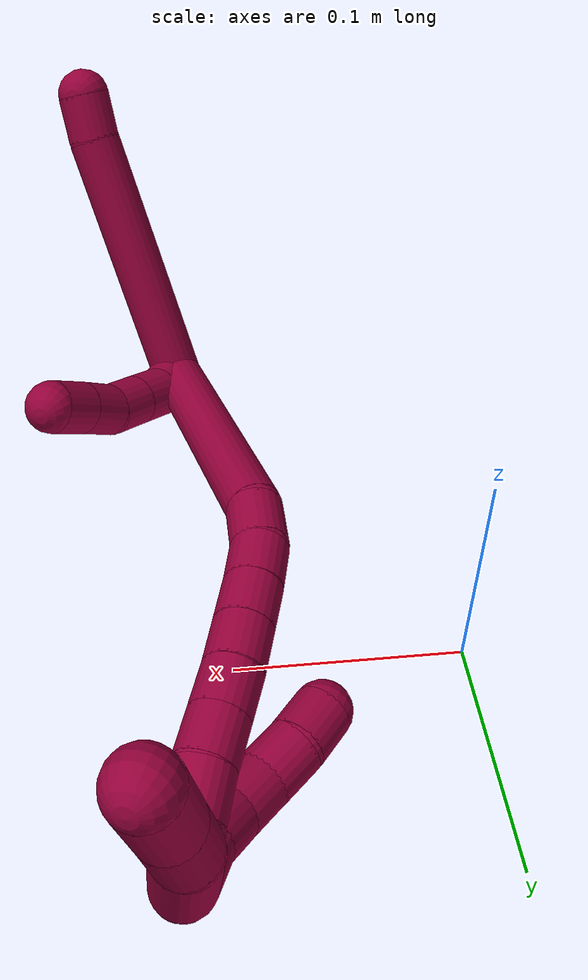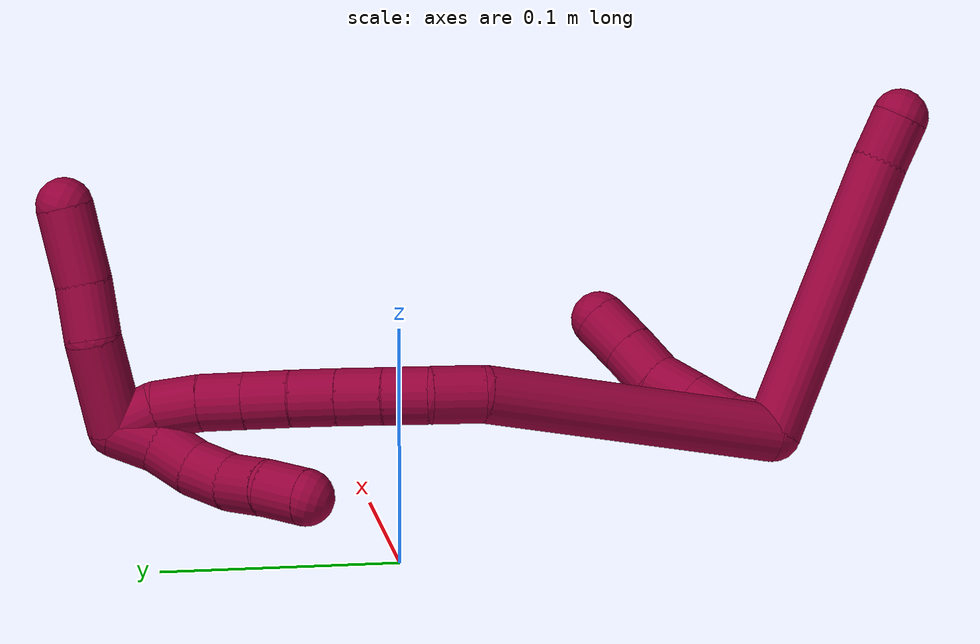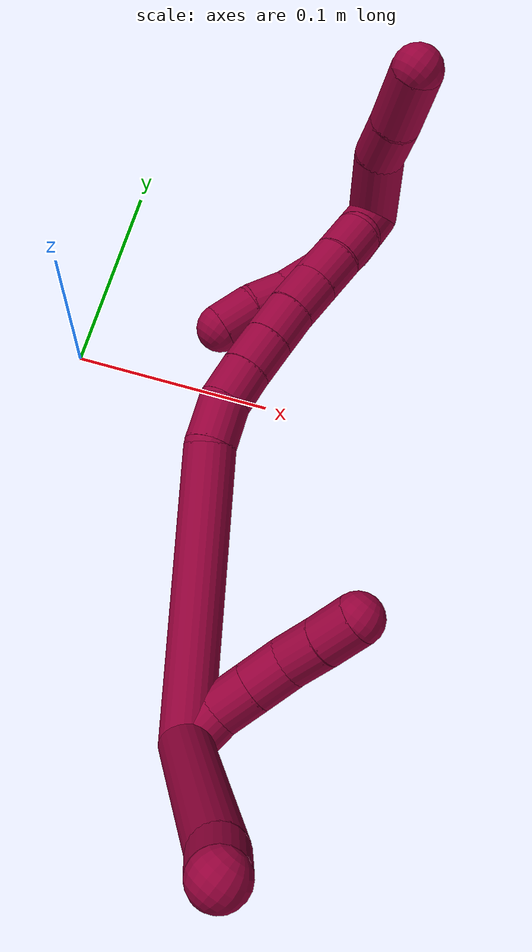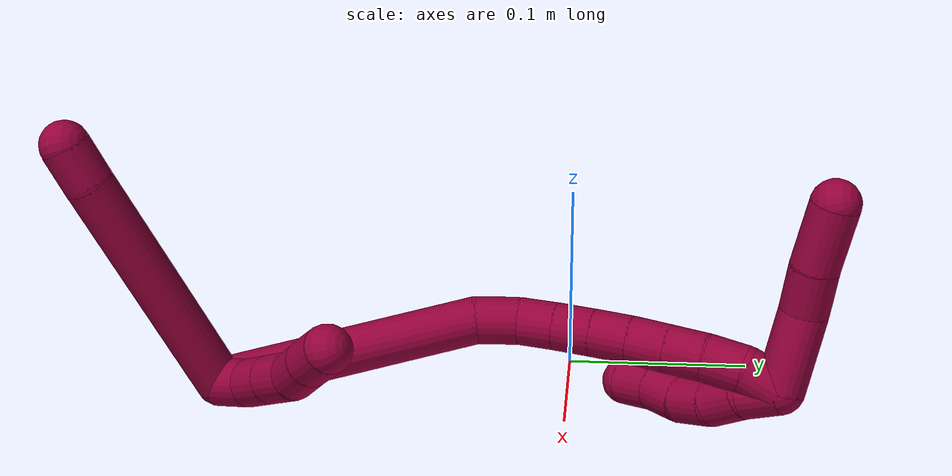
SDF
<sdf version="1.7">
 <world name="default">
  <model name="8">
   <static>0</static>
   <link name="8">
    <collision name="collision-cylinder-e_1_2_8">
     <pose>-0.053602 -0.034983 -0.000201 1.57655 -0.992563 -0.997392</pose>
     <geometry><cylinder><radius>0.0125</radius><length>0.128016</length></cylinder></geometry>
     <surface>
      <friction><ode><mu>1.16</mu><mu2>1.16</mu2><slip1>0</slip1><slip2>0</slip2></ode></friction>
      <contact><ode><kp>1e+06</kp><kd>1</kd><max_vel>0</max_vel><min_depth>0.001</min_depth></ode></contact>
     </surface>
    </collision>
    <visual name="visual-cylinder-e_1_2_8">
     <pose>-0.053602 -0.034983 -0.000201 1.57655 -0.992563 -0.997392</pose>
     <geometry><cylinder><radius>0.0125</radius><length>0.128016</length></cylinder></geometry>
     <material><ambient>0.584314 0 0.227451 1</ambient></material>
    </visual>
    <collision name="collision-cylinder-e_2_8_6">
     <pose>-0.116894 -0.075104 -0.001133 1.71198 -1.07906 -1.20785</pose>
     <geometry><cylinder><radius>0.0125</radius><length>0.021984</length></cylinder></geometry>
     <surface>
      <friction><ode><mu>1.16</mu><mu2>1.16</mu2><slip1>0</slip1><slip2>0</slip2></ode></friction>
      <contact><ode><kp>1e+06</kp><kd>1</kd><max_vel>0</max_vel><min_depth>0.001</min_depth></ode></contact>
     </surface>
    </collision>
    <visual name="visual-cylinder-e_2_8_6">
     <pose>-0.116894 -0.075104 -0.001133 1.71198 -1.07906 -1.20785</pose>
     <geometry><cylinder><radius>0.0125</radius><length>0.021984</length></cylinder></geometry>
     <material><ambient>0.584314 0 0.227451 1</ambient></material>
    </visual>
    <collision name="collision-cylinder-e_1_2_9">
     <pose>0.001448 -0.000731 0.009867 0.073994 0.145359 0.00539</pose>
     <geometry><cylinder><radius>0.0125</radius><length>0.02</length></cylinder></geometry>
     <surface>
      <friction><ode><mu>1.16</mu><mu2>1.16</mu2><slip1>0</slip1><slip2>0</slip2></ode></friction>
      <contact><ode><kp>1e+06</kp><kd>1</kd><max_vel>0</max_vel><min_depth>0.001</min_depth></ode></contact>
     </surface>
    </collision>
    <visual name="visual-cylinder-e_1_2_9">
     <pose>0.001448 -0.000731 0.009867 0.073994 0.145359 0.00539</pose>
     <geometry><cylinder><radius>0.0125</radius><length>0.02</length></cylinder></geometry>
     <material><ambient>0.584314 0 0.227451 1</ambient></material>
    </visual>
    <collision name="collision-cylinder-e_2_9_10">
     <pose>0.002792 -0.004539 0.02925 0.312649 -0.010525 -0.001659</pose>
     <geometry><cylinder><radius>0.0125</radius><length>0.02</length></cylinder></geometry>
     <surface>
      <friction><ode><mu>1.16</mu><mu2>1.16</mu2><slip1>0</slip1><slip2>0</slip2></ode></friction>
      <contact><ode><kp>1e+06</kp><kd>1</kd><max_vel>0</max_vel><min_depth>0.001</min_depth></ode></contact>
     </surface>
    </collision>
    <visual name="visual-cylinder-e_2_9_10">
     <pose>0.002792 -0.004539 0.02925 0.312649 -0.010525 -0.001659</pose>
     <geometry><cylinder><radius>0.0125</radius><length>0.02</length></cylinder></geometry>
     <material><ambient>0.584314 0 0.227451 1</ambient></material>
    </visual>
    <collision name="collision-cylinder-e_3_10_11">
     <pose>0.002627 -0.010651 0.048292 0.308525 -0.005926 -0.000921</pose>
     <geometry><cylinder><radius>0.0125</radius><length>0.02</length></cylinder></geometry>
     <surface>
      <friction><ode><mu>1.16</mu><mu2>1.16</mu2><slip1>0</slip1><slip2>0</slip2></ode></friction>
      <contact><ode><kp>1e+06</kp><kd>1</kd><max_vel>0</max_vel><min_depth>0.001</min_depth></ode></contact>
     </surface>
    </collision>
    <visual name="visual-cylinder-e_3_10_11">
     <pose>0.002627 -0.010651 0.048292 0.308525 -0.005926 -0.000921</pose>
     <geometry><cylinder><radius>0.0125</radius><length>0.02</length></cylinder></geometry>
     <material><ambient>0.584314 0 0.227451 1</ambient></material>
    </visual>
    <collision name="collision-cylinder-e_4_11_12">
     <pose>-0.000104 -0.017877 0.066498 0.449815 -0.270435 -0.062229</pose>
     <geometry><cylinder><radius>0.0125</radius><length>0.02</length></cylinder></geometry>
     <surface>
      <friction><ode><mu>1.16</mu><mu2>1.16</mu2><slip1>0</slip1><slip2>0</slip2></ode></friction>
      <contact><ode><kp>1e+06</kp><kd>1</kd><max_vel>0</max_vel><min_depth>0.001</min_depth></ode></contact>
     </surface>
    </collision>
    <visual name="visual-cylinder-e_4_11_12">
     <pose>-0.000104 -0.017877 0.066498 0.449815 -0.270435 -0.062229</pose>
     <geometry><cylinder><radius>0.0125</radius><length>0.02</length></cylinder></geometry>
     <material><ambient>0.584314 0 0.227451 1</ambient></material>
    </visual>
    <collision name="collision-cylinder-e_5_12_5">
     <pose>-0.005255 -0.025957 0.084048 0.413178 -0.250613 -0.052787</pose>
     <geometry><cylinder><radius>0.0125</radius><length>0.02</length></cylinder></geometry>
     <surface>
      <friction><ode><mu>1.16</mu><mu2>1.16</mu2><slip1>0</slip1><slip2>0</slip2></ode></friction>
      <contact><ode><kp>1e+06</kp><kd>1</kd><max_vel>0</max_vel><min_depth>0.001</min_depth></ode></contact>
     </surface>
    </collision>
    <visual name="visual-cylinder-e_5_12_5">
     <pose>-0.005255 -0.025957 0.084048 0.413178 -0.250613 -0.052787</pose>
     <geometry><cylinder><radius>0.0125</radius><length>0.02</length></cylinder></geometry>
     <material><ambient>0.584314 0 0.227451 1</ambient></material>
    </visual>
    <collision name="collision-cylinder-e_1_2_13">
     <pose>-0.003802 0.038665 0.056378 -0.601136 -0.055564 0.017226</pose>
     <geometry><cylinder><radius>0.0125</radius><length>0.136937</length></cylinder></geometry>
     <surface>
      <friction><ode><mu>1.16</mu><mu2>1.16</mu2><slip1>0</slip1><slip2>0</slip2></ode></friction>
      <contact><ode><kp>1e+06</kp><kd>1</kd><max_vel>0</max_vel><min_depth>0.001</min_depth></ode></contact>
     </surface>
    </collision>
    <visual name="visual-cylinder-e_1_2_13">
     <pose>-0.003802 0.038665 0.056378 -0.601136 -0.055564 0.017226</pose>
     <geometry><cylinder><radius>0.0125</radius><length>0.136937</length></cylinder></geometry>
     <material><ambient>0.584314 0 0.227451 1</ambient></material>
    </visual>
    <collision name="collision-cylinder-e_2_13_14">
     <pose>-0.005375 0.082308 0.122846 -0.458449 0.195665 -0.045792</pose>
     <geometry><cylinder><radius>0.0125</radius><length>0.02294</length></cylinder></geometry>
     <surface>
      <friction><ode><mu>1.16</mu><mu2>1.16</mu2><slip1>0</slip1><slip2>0</slip2></ode></friction>
      <contact><ode><kp>1e+06</kp><kd>1</kd><max_vel>0</max_vel><min_depth>0.001</min_depth></ode></contact>
     </surface>
    </collision>
    <visual name="visual-cylinder-e_2_13_14">
     <pose>-0.005375 0.082308 0.122846 -0.458449 0.195665 -0.045792</pose>
     <geometry><cylinder><radius>0.0125</radius><length>0.02294</length></cylinder></geometry>
     <material><ambient>0.584314 0 0.227451 1</ambient></material>
    </visual>
    <collision name="collision-cylinder-e_3_14_15">
     <pose>-8.1e-05 0.089452 0.142217 -0.229083 0.311036 -0.036071</pose>
     <geometry><cylinder><radius>0.0125</radius><length>0.020022</length></cylinder></geometry>
     <surface>
      <friction><ode><mu>1.16</mu><mu2>1.16</mu2><slip1>0</slip1><slip2>0</slip2></ode></friction>
      <contact><ode><kp>1e+06</kp><kd>1</kd><max_vel>0</max_vel><min_depth>0.001</min_depth></ode></contact>
     </surface>
    </collision>
    <visual name="visual-cylinder-e_3_14_15">
     <pose>-8.1e-05 0.089452 0.142217 -0.229083 0.311036 -0.036071</pose>
     <geometry><cylinder><radius>0.0125</radius><length>0.020022</length></cylinder></geometry>
     <material><ambient>0.584314 0 0.227451 1</ambient></material>
    </visual>
    <collision name="collision-cylinder-e_4_15_16">
     <pose>0.006219 0.093331 0.160828 -0.181759 0.328832 -0.030237</pose>
     <geometry><cylinder><radius>0.0125</radius><length>0.020045</length></cylinder></geometry>
     <surface>
      <friction><ode><mu>1.16</mu><mu2>1.16</mu2><slip1>0</slip1><slip2>0</slip2></ode></friction>
      <contact><ode><kp>1e+06</kp><kd>1</kd><max_vel>0</max_vel><min_depth>0.001</min_depth></ode></contact>
     </surface>
    </collision>
    <visual name="visual-cylinder-e_4_15_16">
     <pose>0.006219 0.093331 0.160828 -0.181759 0.328832 -0.030237</pose>
     <geometry><cylinder><radius>0.0125</radius><length>0.020045</length></cylinder></geometry>
     <material><ambient>0.584314 0 0.227451 1</ambient></material>
    </visual>
    <collision name="collision-cylinder-e_5_16_17">
     <pose>0.012817 0.09675 0.179429 -0.181822 0.342469 -0.031526</pose>
     <geometry><cylinder><radius>0.0125</radius><length>0.020017</length></cylinder></geometry>
     <surface>
      <friction><ode><mu>1.16</mu><mu2>1.16</mu2><slip1>0</slip1><slip2>0</slip2></ode></friction>
      <contact><ode><kp>1e+06</kp><kd>1</kd><max_vel>0</max_vel><min_depth>0.001</min_depth></ode></contact>
     </surface>
    </collision>
    <visual name="visual-cylinder-e_5_16_17">
     <pose>0.012817 0.09675 0.179429 -0.181822 0.342469 -0.031526</pose>
     <geometry><cylinder><radius>0.0125</radius><length>0.020017</length></cylinder></geometry>
     <material><ambient>0.584314 0 0.227451 1</ambient></material>
    </visual>
    <collision name="collision-cylinder-e_6_17_18">
     <pose>0.019915 0.099639 0.19792 -0.127774 0.382223 -0.024753</pose>
     <geometry><cylinder><radius>0.0125</radius><length>0.020036</length></cylinder></geometry>
     <surface>
      <friction><ode><mu>1.16</mu><mu2>1.16</mu2><slip1>0</slip1><slip2>0</slip2></ode></friction>
      <contact><ode><kp>1e+06</kp><kd>1</kd><max_vel>0</max_vel><min_depth>0.001</min_depth></ode></contact>
     </surface>
    </collision>
    <visual name="visual-cylinder-e_6_17_18">
     <pose>0.019915 0.099639 0.19792 -0.127774 0.382223 -0.024753</pose>
     <geometry><cylinder><radius>0.0125</radius><length>0.020036</length></cylinder></geometry>
     <material><ambient>0.584314 0 0.227451 1</ambient></material>
    </visual>
    <collision name="collision-cylinder-e_7_18_19">
     <pose>0.027359 0.101984 0.216354 -0.125275 0.379864 -0.024114</pose>
     <geometry><cylinder><radius>0.0125</radius><length>0.02</length></cylinder></geometry>
     <surface>
      <friction><ode><mu>1.16</mu><mu2>1.16</mu2><slip1>0</slip1><slip2>0</slip2></ode></friction>
      <contact><ode><kp>1e+06</kp><kd>1</kd><max_vel>0</max_vel><min_depth>0.001</min_depth></ode></contact>
     </surface>
    </collision>
    <visual name="visual-cylinder-e_7_18_19">
     <pose>0.027359 0.101984 0.216354 -0.125275 0.379864 -0.024114</pose>
     <geometry><cylinder><radius>0.0125</radius><length>0.02</length></cylinder></geometry>
     <material><ambient>0.584314 0 0.227451 1</ambient></material>
    </visual>
    <collision name="collision-cylinder-e_8_19_20">
     <pose>0.03554 0.104854 0.234348 -0.192338 0.463746 -0.045547</pose>
     <geometry><cylinder><radius>0.0125</radius><length>0.02</length></cylinder></geometry>
     <surface>
      <friction><ode><mu>1.16</mu><mu2>1.16</mu2><slip1>0</slip1><slip2>0</slip2></ode></friction>
      <contact><ode><kp>1e+06</kp><kd>1</kd><max_vel>0</max_vel><min_depth>0.001</min_depth></ode></contact>
     </surface>
    </collision>
    <visual name="visual-cylinder-e_8_19_20">
     <pose>0.03554 0.104854 0.234348 -0.192338 0.463746 -0.045547</pose>
     <geometry><cylinder><radius>0.0125</radius><length>0.02</length></cylinder></geometry>
     <material><ambient>0.584314 0 0.227451 1</ambient></material>
    </visual>
    <collision name="collision-cylinder-e_9_20_1">
     <pose>0.046447 0.109335 0.250265 -0.370385 0.698788 -0.1363</pose>
     <geometry><cylinder><radius>0.0125</radius><length>0.020002</length></cylinder></geometry>
     <surface>
      <friction><ode><mu>1.16</mu><mu2>1.16</mu2><slip1>0</slip1><slip2>0</slip2></ode></friction>
      <contact><ode><kp>1e+06</kp><kd>1</kd><max_vel>0</max_vel><min_depth>0.001</min_depth></ode></contact>
     </surface>
    </collision>
    <visual name="visual-cylinder-e_9_20_1">
     <pose>0.046447 0.109335 0.250265 -0.370385 0.698788 -0.1363</pose>
     <geometry><cylinder><radius>0.0125</radius><length>0.020002</length></cylinder></geometry>
     <material><ambient>0.584314 0 0.227451 1</ambient></material>
    </visual>
    <collision name="collision-cylinder-e_1_1_21">
     <pose>0.052808 0.111981 0.247404 3.129 -0.007287 -1.04911</pose>
     <geometry><cylinder><radius>0.0125</radius><length>0.02</length></cylinder></geometry>
     <surface>
      <friction><ode><mu>1.16</mu><mu2>1.16</mu2><slip1>0</slip1><slip2>0</slip2></ode></friction>
      <contact><ode><kp>1e+06</kp><kd>1</kd><max_vel>0</max_vel><min_depth>0.001</min_depth></ode></contact>
     </surface>
    </collision>
    <visual name="visual-cylinder-e_1_1_21">
     <pose>0.052808 0.111981 0.247404 3.129 -0.007287 -1.04911</pose>
     <geometry><cylinder><radius>0.0125</radius><length>0.02</length></cylinder></geometry>
     <material><ambient>0.584314 0 0.227451 1</ambient></material>
    </visual>
    <collision name="collision-cylinder-e_2_21_22">
     <pose>0.053806 0.11412 0.227724 -2.91178 0.107275 -0.870826</pose>
     <geometry><cylinder><radius>0.0125</radius><length>0.02</length></cylinder></geometry>
     <surface>
      <friction><ode><mu>1.16</mu><mu2>1.16</mu2><slip1>0</slip1><slip2>0</slip2></ode></friction>
      <contact><ode><kp>1e+06</kp><kd>1</kd><max_vel>0</max_vel><min_depth>0.001</min_depth></ode></contact>
     </surface>
    </collision>
    <visual name="visual-cylinder-e_2_21_22">
     <pose>0.053806 0.11412 0.227724 -2.91178 0.107275 -0.870826</pose>
     <geometry><cylinder><radius>0.0125</radius><length>0.02</length></cylinder></geometry>
     <material><ambient>0.584314 0 0.227451 1</ambient></material>
    </visual>
    <collision name="collision-cylinder-e_3_22_23">
     <pose>0.053311 0.119527 0.208679 -2.81783 -0.157214 0.898828</pose>
     <geometry><cylinder><radius>0.0125</radius><length>0.02</length></cylinder></geometry>
     <surface>
      <friction><ode><mu>1.16</mu><mu2>1.16</mu2><slip1>0</slip1><slip2>0</slip2></ode></friction>
      <contact><ode><kp>1e+06</kp><kd>1</kd><max_vel>0</max_vel><min_depth>0.001</min_depth></ode></contact>
     </surface>
    </collision>
    <visual name="visual-cylinder-e_3_22_23">
     <pose>0.053311 0.119527 0.208679 -2.81783 -0.157214 0.898828</pose>
     <geometry><cylinder><radius>0.0125</radius><length>0.02</length></cylinder></geometry>
     <material><ambient>0.584314 0 0.227451 1</ambient></material>
    </visual>
    <collision name="collision-cylinder-e_4_23_24">
     <pose>0.047963 0.126293 0.190797 -2.73941 -0.387807 1.53345</pose>
     <geometry><cylinder><radius>0.0125</radius><length>0.02</length></cylinder></geometry>
     <surface>
      <friction><ode><mu>1.16</mu><mu2>1.16</mu2><slip1>0</slip1><slip2>0</slip2></ode></friction>
      <contact><ode><kp>1e+06</kp><kd>1</kd><max_vel>0</max_vel><min_depth>0.001</min_depth></ode></contact>
     </surface>
    </collision>
    <visual name="visual-cylinder-e_4_23_24">
     <pose>0.047963 0.126293 0.190797 -2.73941 -0.387807 1.53345</pose>
     <geometry><cylinder><radius>0.0125</radius><length>0.02</length></cylinder></geometry>
     <material><ambient>0.584314 0 0.227451 1</ambient></material>
    </visual>
    <collision name="collision-cylinder-e_5_24_4">
     <pose>0.041596 0.13235 0.17293 -2.88688 -0.261597 1.59775</pose>
     <geometry><cylinder><radius>0.0125</radius><length>0.02</length></cylinder></geometry>
     <surface>
      <friction><ode><mu>1.16</mu><mu2>1.16</mu2><slip1>0</slip1><slip2>0</slip2></ode></friction>
      <contact><ode><kp>1e+06</kp><kd>1</kd><max_vel>0</max_vel><min_depth>0.001</min_depth></ode></contact>
     </surface>
    </collision>
    <visual name="visual-cylinder-e_5_24_4">
     <pose>0.041596 0.13235 0.17293 -2.88688 -0.261597 1.59775</pose>
     <geometry><cylinder><radius>0.0125</radius><length>0.02</length></cylinder></geometry>
     <material><ambient>0.584314 0 0.227451 1</ambient></material>
    </visual>
    <collision name="collision-cylinder-e_1_1_25">
     <pose>0.034508 0.112064 0.267221 0.00441 -1.07998 -0.002643</pose>
     <geometry><cylinder><radius>0.0125</radius><length>0.041664</length></cylinder></geometry>
     <surface>
      <friction><ode><mu>1.16</mu><mu2>1.16</mu2><slip1>0</slip1><slip2>0</slip2></ode></friction>
      <contact><ode><kp>1e+06</kp><kd>1</kd><max_vel>0</max_vel><min_depth>0.001</min_depth></ode></contact>
     </surface>
    </collision>
    <visual name="visual-cylinder-e_1_1_25">
     <pose>0.034508 0.112064 0.267221 0.00441 -1.07998 -0.002643</pose>
     <geometry><cylinder><radius>0.0125</radius><length>0.041664</length></cylinder></geometry>
     <material><ambient>0.584314 0 0.227451 1</ambient></material>
    </visual>
    <collision name="collision-cylinder-e_2_25_26">
     <pose>0.005922 0.108832 0.282891 0.498971 -0.992755 -0.274265</pose>
     <geometry><cylinder><radius>0.0125</radius><length>0.02439</length></cylinder></geometry>
     <surface>
      <friction><ode><mu>1.16</mu><mu2>1.16</mu2><slip1>0</slip1><slip2>0</slip2></ode></friction>
      <contact><ode><kp>1e+06</kp><kd>1</kd><max_vel>0</max_vel><min_depth>0.001</min_depth></ode></contact>
     </surface>
    </collision>
    <visual name="visual-cylinder-e_2_25_26">
     <pose>0.005922 0.108832 0.282891 0.498971 -0.992755 -0.274265</pose>
     <geometry><cylinder><radius>0.0125</radius><length>0.02439</length></cylinder></geometry>
     <material><ambient>0.584314 0 0.227451 1</ambient></material>
    </visual>
    <collision name="collision-cylinder-e_3_26_3">
     <pose>-0.018284 0.102389 0.297781 0.345602 -0.969129 -0.183252</pose>
     <geometry><cylinder><radius>0.0125</radius><length>0.033947</length></cylinder></geometry>
     <surface>
      <friction><ode><mu>1.16</mu><mu2>1.16</mu2><slip1>0</slip1><slip2>0</slip2></ode></friction>
      <contact><ode><kp>1e+06</kp><kd>1</kd><max_vel>0</max_vel><min_depth>0.001</min_depth></ode></contact>
     </surface>
    </collision>
    <visual name="visual-cylinder-e_3_26_3">
     <pose>-0.018284 0.102389 0.297781 0.345602 -0.969129 -0.183252</pose>
     <geometry><cylinder><radius>0.0125</radius><length>0.033947</length></cylinder></geometry>
     <material><ambient>0.584314 0 0.227451 1</ambient></material>
    </visual>
    <collision name="collision-sphere-3">
     <pose>-0.032277 0.099135 0.30682 0 -0 0</pose>
     <geometry><sphere><radius>0.0125</radius></sphere></geometry>
     <surface>
      <friction><ode><mu>1.16</mu><mu2>1.16</mu2><slip1>0</slip1><slip2>0</slip2></ode></friction>
      <contact><ode><kp>1e+06</kp><kd>1</kd><max_vel>0</max_vel><min_depth>0.001</min_depth></ode></contact>
     </surface>
    </collision>
    <visual name="visual-sphere-3">
     <pose>-0.032277 0.099135 0.30682 0 -0 0</pose>
     <geometry><sphere><radius>0.0125</radius></sphere></geometry>
     <material><ambient>0.584314 0 0.227451 1</ambient></material>
    </visual>
    <collision name="collision-sphere-26">
     <pose>-0.004292 0.105644 0.288742 0 -0 0</pose>
     <geometry><sphere><radius>0.0125</radius></sphere></geometry>
     <surface>
      <friction><ode><mu>1.16</mu><mu2>1.16</mu2><slip1>0</slip1><slip2>0</slip2></ode></friction>
      <contact><ode><kp>1e+06</kp><kd>1</kd><max_vel>0</max_vel><min_depth>0.001</min_depth></ode></contact>
     </surface>
    </collision>
    <visual name="visual-sphere-26">
     <pose>-0.004292 0.105644 0.288742 0 -0 0</pose>
     <geometry><sphere><radius>0.0125</radius></sphere></geometry>
     <material><ambient>0.584314 0 0.227451 1</ambient></material>
    </visual>
    <collision name="collision-sphere-25">
     <pose>0.016136 0.112021 0.27704 0 -0 0</pose>
     <geometry><sphere><radius>0.0125</radius></sphere></geometry>
     <surface>
      <friction><ode><mu>1.16</mu><mu2>1.16</mu2><slip1>0</slip1><slip2>0</slip2></ode></friction>
      <contact><ode><kp>1e+06</kp><kd>1</kd><max_vel>0</max_vel><min_depth>0.001</min_depth></ode></contact>
     </surface>
    </collision>
    <visual name="visual-sphere-25">
     <pose>0.016136 0.112021 0.27704 0 -0 0</pose>
     <geometry><sphere><radius>0.0125</radius></sphere></geometry>
     <material><ambient>0.584314 0 0.227451 1</ambient></material>
    </visual>
    <collision name="collision-sphere-4">
     <pose>0.039009 0.134784 0.163582 0 -0 0</pose>
     <geometry><sphere><radius>0.0125</radius></sphere></geometry>
     <surface>
      <friction><ode><mu>1.16</mu><mu2>1.16</mu2><slip1>0</slip1><slip2>0</slip2></ode></friction>
      <contact><ode><kp>1e+06</kp><kd>1</kd><max_vel>0</max_vel><min_depth>0.001</min_depth></ode></contact>
     </surface>
    </collision>
    <visual name="visual-sphere-4">
     <pose>0.039009 0.134784 0.163582 0 -0 0</pose>
     <geometry><sphere><radius>0.0125</radius></sphere></geometry>
     <material><ambient>0.584314 0 0.227451 1</ambient></material>
    </visual>
    <collision name="collision-sphere-24">
     <pose>0.044182 0.129916 0.182278 0 -0 0</pose>
     <geometry><sphere><radius>0.0125</radius></sphere></geometry>
     <surface>
      <friction><ode><mu>1.16</mu><mu2>1.16</mu2><slip1>0</slip1><slip2>0</slip2></ode></friction>
      <contact><ode><kp>1e+06</kp><kd>1</kd><max_vel>0</max_vel><min_depth>0.001</min_depth></ode></contact>
     </surface>
    </collision>
    <visual name="visual-sphere-24">
     <pose>0.044182 0.129916 0.182278 0 -0 0</pose>
     <geometry><sphere><radius>0.0125</radius></sphere></geometry>
     <material><ambient>0.584314 0 0.227451 1</ambient></material>
    </visual>
    <collision name="collision-sphere-23">
     <pose>0.051745 0.122669 0.199315 0 -0 0</pose>
     <geometry><sphere><radius>0.0125</radius></sphere></geometry>
     <surface>
      <friction><ode><mu>1.16</mu><mu2>1.16</mu2><slip1>0</slip1><slip2>0</slip2></ode></friction>
      <contact><ode><kp>1e+06</kp><kd>1</kd><max_vel>0</max_vel><min_depth>0.001</min_depth></ode></contact>
     </surface>
    </collision>
    <visual name="visual-sphere-23">
     <pose>0.051745 0.122669 0.199315 0 -0 0</pose>
     <geometry><sphere><radius>0.0125</radius></sphere></geometry>
     <material><ambient>0.584314 0 0.227451 1</ambient></material>
    </visual>
    <collision name="collision-sphere-22">
     <pose>0.054876 0.116385 0.218042 0 -0 0</pose>
     <geometry><sphere><radius>0.0125</radius></sphere></geometry>
     <surface>
      <friction><ode><mu>1.16</mu><mu2>1.16</mu2><slip1>0</slip1><slip2>0</slip2></ode></friction>
      <contact><ode><kp>1e+06</kp><kd>1</kd><max_vel>0</max_vel><min_depth>0.001</min_depth></ode></contact>
     </surface>
    </collision>
    <visual name="visual-sphere-22">
     <pose>0.054876 0.116385 0.218042 0 -0 0</pose>
     <geometry><sphere><radius>0.0125</radius></sphere></geometry>
     <material><ambient>0.584314 0 0.227451 1</ambient></material>
    </visual>
    <collision name="collision-sphere-21">
     <pose>0.052735 0.111855 0.237405 0 -0 0</pose>
     <geometry><sphere><radius>0.0125</radius></sphere></geometry>
     <surface>
      <friction><ode><mu>1.16</mu><mu2>1.16</mu2><slip1>0</slip1><slip2>0</slip2></ode></friction>
      <contact><ode><kp>1e+06</kp><kd>1</kd><max_vel>0</max_vel><min_depth>0.001</min_depth></ode></contact>
     </surface>
    </collision>
    <visual name="visual-sphere-21">
     <pose>0.052735 0.111855 0.237405 0 -0 0</pose>
     <geometry><sphere><radius>0.0125</radius></sphere></geometry>
     <material><ambient>0.584314 0 0.227451 1</ambient></material>
    </visual>
    <collision name="collision-sphere-1">
     <pose>0.052881 0.112107 0.257403 0 -0 0</pose>
     <geometry><sphere><radius>0.0125</radius></sphere></geometry>
     <surface>
      <friction><ode><mu>1.16</mu><mu2>1.16</mu2><slip1>0</slip1><slip2>0</slip2></ode></friction>
      <contact><ode><kp>1e+06</kp><kd>1</kd><max_vel>0</max_vel><min_depth>0.001</min_depth></ode></contact>
     </surface>
    </collision>
    <visual name="visual-sphere-1">
     <pose>0.052881 0.112107 0.257403 0 -0 0</pose>
     <geometry><sphere><radius>0.0125</radius></sphere></geometry>
     <material><ambient>0.584314 0 0.227451 1</ambient></material>
    </visual>
    <collision name="collision-sphere-11">
     <pose>0.002568 -0.013687 0.05782 0 -0 0</pose>
     <geometry><sphere><radius>0.0125</radius></sphere></geometry>
     <surface>
      <friction><ode><mu>1.16</mu><mu2>1.16</mu2><slip1>0</slip1><slip2>0</slip2></ode></friction>
      <contact><ode><kp>1e+06</kp><kd>1</kd><max_vel>0</max_vel><min_depth>0.001</min_depth></ode></contact>
     </surface>
    </collision>
    <visual name="visual-sphere-11">
     <pose>0.002568 -0.013687 0.05782 0 -0 0</pose>
     <geometry><sphere><radius>0.0125</radius></sphere></geometry>
     <material><ambient>0.584314 0 0.227451 1</ambient></material>
    </visual>
    <collision name="collision-sphere-10">
     <pose>0.002686 -0.007614 0.038764 0 -0 0</pose>
     <geometry><sphere><radius>0.0125</radius></sphere></geometry>
     <surface>
      <friction><ode><mu>1.16</mu><mu2>1.16</mu2><slip1>0</slip1><slip2>0</slip2></ode></friction>
      <contact><ode><kp>1e+06</kp><kd>1</kd><max_vel>0</max_vel><min_depth>0.001</min_depth></ode></contact>
     </surface>
    </collision>
    <visual name="visual-sphere-10">
     <pose>0.002686 -0.007614 0.038764 0 -0 0</pose>
     <geometry><sphere><radius>0.0125</radius></sphere></geometry>
     <material><ambient>0.584314 0 0.227451 1</ambient></material>
    </visual>
    <collision name="collision-sphere-6">
     <pose>-0.126584 -0.080242 -0.001863 0 -0 0</pose>
     <geometry><sphere><radius>0.0125</radius></sphere></geometry>
     <surface>
      <friction><ode><mu>1.16</mu><mu2>1.16</mu2><slip1>0</slip1><slip2>0</slip2></ode></friction>
      <contact><ode><kp>1e+06</kp><kd>1</kd><max_vel>0</max_vel><min_depth>0.001</min_depth></ode></contact>
     </surface>
    </collision>
    <visual name="visual-sphere-6">
     <pose>-0.126584 -0.080242 -0.001863 0 -0 0</pose>
     <geometry><sphere><radius>0.0125</radius></sphere></geometry>
     <material><ambient>0.584314 0 0.227451 1</ambient></material>
    </visual>
    <collision name="collision-sphere-9">
     <pose>0.002897 -0.001463 0.019735 0 -0 0</pose>
     <geometry><sphere><radius>0.0125</radius></sphere></geometry>
     <surface>
      <friction><ode><mu>1.16</mu><mu2>1.16</mu2><slip1>0</slip1><slip2>0</slip2></ode></friction>
      <contact><ode><kp>1e+06</kp><kd>1</kd><max_vel>0</max_vel><min_depth>0.001</min_depth></ode></contact>
     </surface>
    </collision>
    <visual name="visual-sphere-9">
     <pose>0.002897 -0.001463 0.019735 0 -0 0</pose>
     <geometry><sphere><radius>0.0125</radius></sphere></geometry>
     <material><ambient>0.584314 0 0.227451 1</ambient></material>
    </visual>
    <collision name="collision-sphere-2">
     <geometry><sphere><radius>0.0125</radius></sphere></geometry>
     <surface>
      <friction><ode><mu>1.16</mu><mu2>1.16</mu2><slip1>0</slip1><slip2>0</slip2></ode></friction>
      <contact><ode><kp>1e+06</kp><kd>1</kd><max_vel>0</max_vel><min_depth>0.001</min_depth></ode></contact>
     </surface>
    </collision>
    <visual name="visual-sphere-2">
     <geometry><sphere><radius>0.0125</radius></sphere></geometry>
     <material><ambient>0.584314 0 0.227451 1</ambient></material>
    </visual>
    <collision name="collision-sphere-19">
     <pose>0.031067 0.103144 0.225569 0 -0 0</pose>
     <geometry><sphere><radius>0.0125</radius></sphere></geometry>
     <surface>
      <friction><ode><mu>1.16</mu><mu2>1.16</mu2><slip1>0</slip1><slip2>0</slip2></ode></friction>
      <contact><ode><kp>1e+06</kp><kd>1</kd><max_vel>0</max_vel><min_depth>0.001</min_depth></ode></contact>
     </surface>
    </collision>
    <visual name="visual-sphere-19">
     <pose>0.031067 0.103144 0.225569 0 -0 0</pose>
     <geometry><sphere><radius>0.0125</radius></sphere></geometry>
     <material><ambient>0.584314 0 0.227451 1</ambient></material>
    </visual>
    <collision name="collision-sphere-8">
     <pose>-0.107205 -0.069966 -0.000403 0 -0 0</pose>
     <geometry><sphere><radius>0.0125</radius></sphere></geometry>
     <surface>
      <friction><ode><mu>1.16</mu><mu2>1.16</mu2><slip1>0</slip1><slip2>0</slip2></ode></friction>
      <contact><ode><kp>1e+06</kp><kd>1</kd><max_vel>0</max_vel><min_depth>0.001</min_depth></ode></contact>
     </surface>
    </collision>
    <visual name="visual-sphere-8">
     <pose>-0.107205 -0.069966 -0.000403 0 -0 0</pose>
     <geometry><sphere><radius>0.0125</radius></sphere></geometry>
     <material><ambient>0.584314 0 0.227451 1</ambient></material>
    </visual>
    <collision name="collision-sphere-12">
     <pose>-0.002775 -0.022067 0.075176 0 -0 0</pose>
     <geometry><sphere><radius>0.0125</radius></sphere></geometry>
     <surface>
      <friction><ode><mu>1.16</mu><mu2>1.16</mu2><slip1>0</slip1><slip2>0</slip2></ode></friction>
      <contact><ode><kp>1e+06</kp><kd>1</kd><max_vel>0</max_vel><min_depth>0.001</min_depth></ode></contact>
     </surface>
    </collision>
    <visual name="visual-sphere-12">
     <pose>-0.002775 -0.022067 0.075176 0 -0 0</pose>
     <geometry><sphere><radius>0.0125</radius></sphere></geometry>
     <material><ambient>0.584314 0 0.227451 1</ambient></material>
    </visual>
    <collision name="collision-sphere-5">
     <pose>-0.007735 -0.029847 0.09292 0 -0 0</pose>
     <geometry><sphere><radius>0.0125</radius></sphere></geometry>
     <surface>
      <friction><ode><mu>1.16</mu><mu2>1.16</mu2><slip1>0</slip1><slip2>0</slip2></ode></friction>
      <contact><ode><kp>1e+06</kp><kd>1</kd><max_vel>0</max_vel><min_depth>0.001</min_depth></ode></contact>
     </surface>
    </collision>
    <visual name="visual-sphere-5">
     <pose>-0.007735 -0.029847 0.09292 0 -0 0</pose>
     <geometry><sphere><radius>0.0125</radius></sphere></geometry>
     <material><ambient>0.584314 0 0.227451 1</ambient></material>
    </visual>
    <collision name="collision-sphere-13">
     <pose>-0.007605 0.077329 0.112757 0 -0 0</pose>
     <geometry><sphere><radius>0.0125</radius></sphere></geometry>
     <surface>
      <friction><ode><mu>1.16</mu><mu2>1.16</mu2><slip1>0</slip1><slip2>0</slip2></ode></friction>
      <contact><ode><kp>1e+06</kp><kd>1</kd><max_vel>0</max_vel><min_depth>0.001</min_depth></ode></contact>
     </surface>
    </collision>
    <visual name="visual-sphere-13">
     <pose>-0.007605 0.077329 0.112757 0 -0 0</pose>
     <geometry><sphere><radius>0.0125</radius></sphere></geometry>
     <material><ambient>0.584314 0 0.227451 1</ambient></material>
    </visual>
    <collision name="collision-sphere-14">
     <pose>-0.003145 0.087288 0.132935 0 -0 0</pose>
     <geometry><sphere><radius>0.0125</radius></sphere></geometry>
     <surface>
      <friction><ode><mu>1.16</mu><mu2>1.16</mu2><slip1>0</slip1><slip2>0</slip2></ode></friction>
      <contact><ode><kp>1e+06</kp><kd>1</kd><max_vel>0</max_vel><min_depth>0.001</min_depth></ode></contact>
     </surface>
    </collision>
    <visual name="visual-sphere-14">
     <pose>-0.003145 0.087288 0.132935 0 -0 0</pose>
     <geometry><sphere><radius>0.0125</radius></sphere></geometry>
     <material><ambient>0.584314 0 0.227451 1</ambient></material>
    </visual>
    <collision name="collision-sphere-15">
     <pose>0.002983 0.091616 0.151498 0 -0 0</pose>
     <geometry><sphere><radius>0.0125</radius></sphere></geometry>
     <surface>
      <friction><ode><mu>1.16</mu><mu2>1.16</mu2><slip1>0</slip1><slip2>0</slip2></ode></friction>
      <contact><ode><kp>1e+06</kp><kd>1</kd><max_vel>0</max_vel><min_depth>0.001</min_depth></ode></contact>
     </surface>
    </collision>
    <visual name="visual-sphere-15">
     <pose>0.002983 0.091616 0.151498 0 -0 0</pose>
     <geometry><sphere><radius>0.0125</radius></sphere></geometry>
     <material><ambient>0.584314 0 0.227451 1</ambient></material>
    </visual>
    <collision name="collision-sphere-16">
     <pose>0.009456 0.095045 0.170157 0 -0 0</pose>
     <geometry><sphere><radius>0.0125</radius></sphere></geometry>
     <surface>
      <friction><ode><mu>1.16</mu><mu2>1.16</mu2><slip1>0</slip1><slip2>0</slip2></ode></friction>
      <contact><ode><kp>1e+06</kp><kd>1</kd><max_vel>0</max_vel><min_depth>0.001</min_depth></ode></contact>
     </surface>
    </collision>
    <visual name="visual-sphere-16">
     <pose>0.009456 0.095045 0.170157 0 -0 0</pose>
     <geometry><sphere><radius>0.0125</radius></sphere></geometry>
     <material><ambient>0.584314 0 0.227451 1</ambient></material>
    </visual>
    <collision name="collision-sphere-17">
     <pose>0.016178 0.098455 0.188701 0 -0 0</pose>
     <geometry><sphere><radius>0.0125</radius></sphere></geometry>
     <surface>
      <friction><ode><mu>1.16</mu><mu2>1.16</mu2><slip1>0</slip1><slip2>0</slip2></ode></friction>
      <contact><ode><kp>1e+06</kp><kd>1</kd><max_vel>0</max_vel><min_depth>0.001</min_depth></ode></contact>
     </surface>
    </collision>
    <visual name="visual-sphere-17">
     <pose>0.016178 0.098455 0.188701 0 -0 0</pose>
     <geometry><sphere><radius>0.0125</radius></sphere></geometry>
     <material><ambient>0.584314 0 0.227451 1</ambient></material>
    </visual>
    <collision name="collision-sphere-18">
     <pose>0.023651 0.100824 0.20714 0 -0 0</pose>
     <geometry><sphere><radius>0.0125</radius></sphere></geometry>
     <surface>
      <friction><ode><mu>1.16</mu><mu2>1.16</mu2><slip1>0</slip1><slip2>0</slip2></ode></friction>
      <contact><ode><kp>1e+06</kp><kd>1</kd><max_vel>0</max_vel><min_depth>0.001</min_depth></ode></contact>
     </surface>
    </collision>
    <visual name="visual-sphere-18">
     <pose>0.023651 0.100824 0.20714 0 -0 0</pose>
     <geometry><sphere><radius>0.0125</radius></sphere></geometry>
     <material><ambient>0.584314 0 0.227451 1</ambient></material>
    </visual>
    <collision name="collision-sphere-20">
     <pose>0.040013 0.106564 0.243127 0 -0 0</pose>
     <geometry><sphere><radius>0.0125</radius></sphere></geometry>
     <surface>
      <friction><ode><mu>1.16</mu><mu2>1.16</mu2><slip1>0</slip1><slip2>0</slip2></ode></friction>
      <contact><ode><kp>1e+06</kp><kd>1</kd><max_vel>0</max_vel><min_depth>0.001</min_depth></ode></contact>
     </surface>
    </collision>
    <visual name="visual-sphere-20">
     <pose>0.040013 0.106564 0.243127 0 -0 0</pose>
     <geometry><sphere><radius>0.0125</radius></sphere></geometry>
     <material><ambient>0.584314 0 0.227451 1</ambient></material>
    </visual>
    <inertial>
     <pose>-0.001505 0.048882 0.12265 0 -0 0</pose>
     <mass>0.75</mass>
     <inertia>
      <ixx>0.000207</ixx>
      <ixy>0</ixy>
      <ixz>0</ixz>
      <iyy>0.00026</iyy>
      <iyz>0</iyz>
      <izz>0.000172</izz>
     </inertia>
    </inertial>
   </link>
   <pose>0.114344 -0.178287 0.020785 -0.467029 1.23445 0.673019</pose>
  </model>
 </world>
</sdf>
